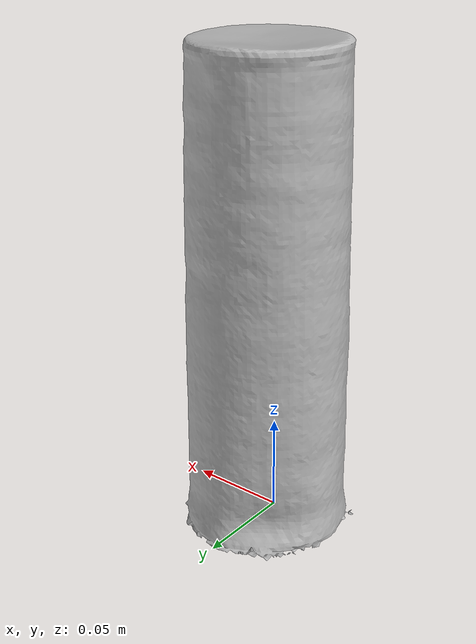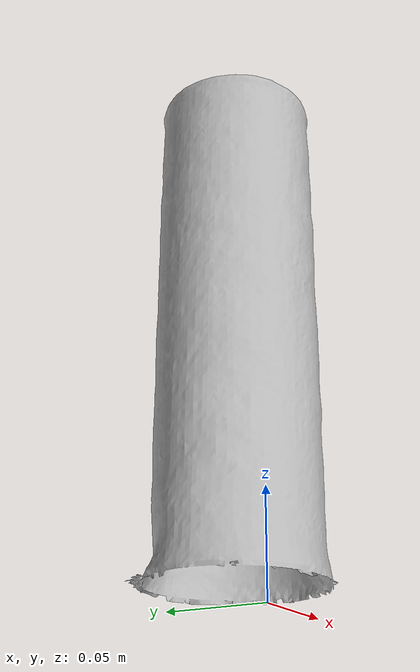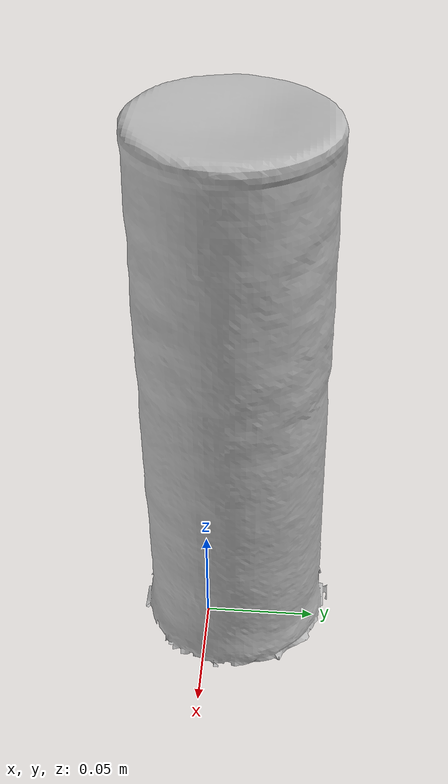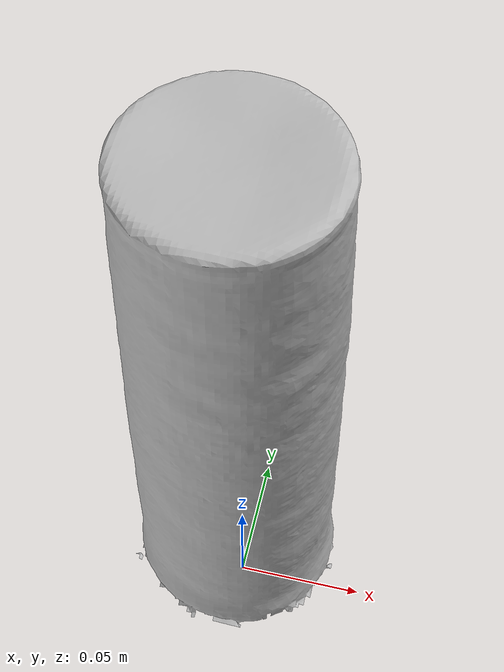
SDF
<?xml version="1.0" ?>
<sdf version="1.4">
  <model name="001_chips_can">
    <pose>0 0 0  0 0 0</pose>
    <link name="body">
      <inertial>
        <!-- Volume: -1.0865159910e-03 -->
        <mass> 1.0 </mass>
        <!-- Center of mass: -5.9903000000e-03  1.1081010000e-02  1.2244101000e-01 -->
        <pose> -5.9903000000e-03  1.1081010000e-02  1.2244101000e-01 0 0 0 </pose>
        <!-- Inertia matrix -->
        <inertia>
          <ixx>  5.1081971518e-03 </ixx>
          <ixy> -6.8856263156e-06 </ixy>
          <ixz>  1.4589027342e-05 </ixz>
          <iyy>  5.1297468231e-03 </iyy>
          <iyz>  2.3121141988e-05 </iyz>
          <izz>  7.1593511522e-04 </izz>
        </inertia>
      </inertial>
      <visual name="visual">
        <geometry>
          <mesh>
            <uri>model://001_chips_can/nontextured.stl</uri>
          </mesh>
        </geometry>
      </visual>
      <collision name="collision">
        <geometry>
          <mesh>
            <uri>model://001_chips_can/nontextured.stl</uri>
          </mesh>
        </geometry>
        <max_contacts>10</max_contacts>
        <surface>
          <friction>
            <ode>
              <mu>0.8</mu>
              <mu2>0.8</mu2>
              <slip1>0</slip1>
              <slip2>0</slip2>
            </ode>
            <torsional>
              <ode/>
            </torsional>
          </friction>
          <contact>
            <ode>
              <kp>1000000.0</kp>
              <kd>1.0</kd>
              <max_vel>0.0</max_vel>
            </ode>
          </contact>
        </surface>
      </collision>
    </link>
  </model>
</sdf>
